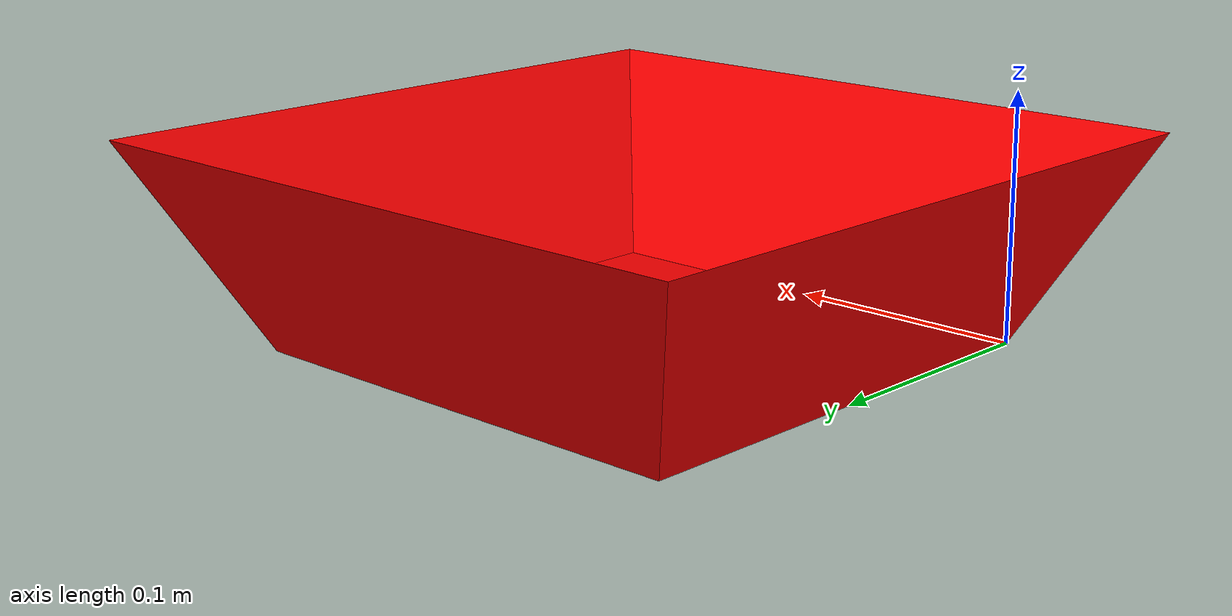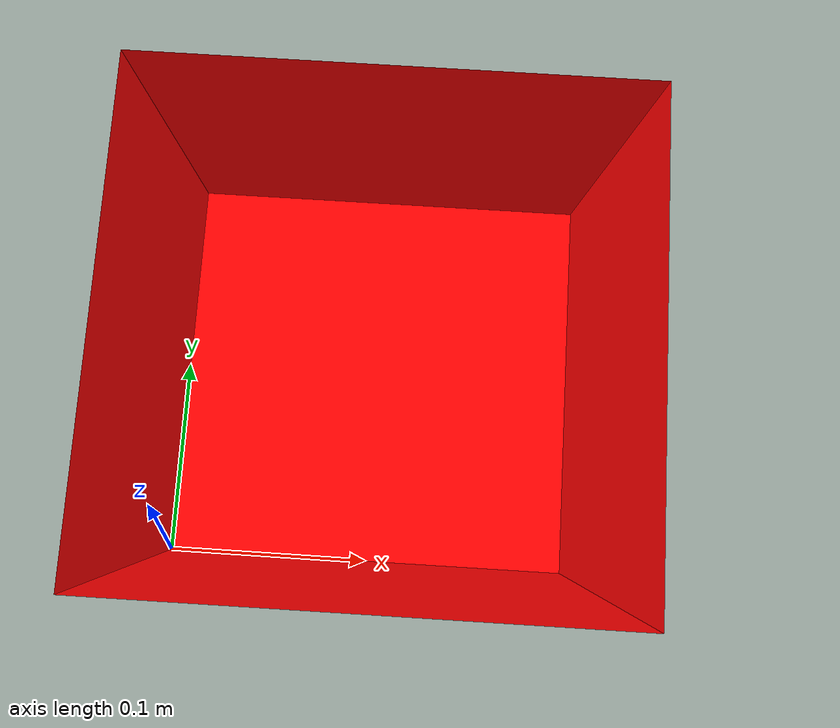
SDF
<?xml version="1.0" ?>
<sdf version="1.5">
  <model name="dst_parcel">
    <static>true</static>
    <link name="chair_link">
        <collision name="chair_collision">
         <geometry>
            <box>
                <size>0.242 0.242 0.093</size>
            </box>
        </geometry>
      </collision>

      <visual name="chair_mesh">
        <cast_shadows>true</cast_shadows>
        <geometry>
            <mesh>
                <uri>model://dst_parcel/meshes/model.dae</uri>
            </mesh>
        </geometry>
      </visual>
    </link>
  </model>
</sdf>
